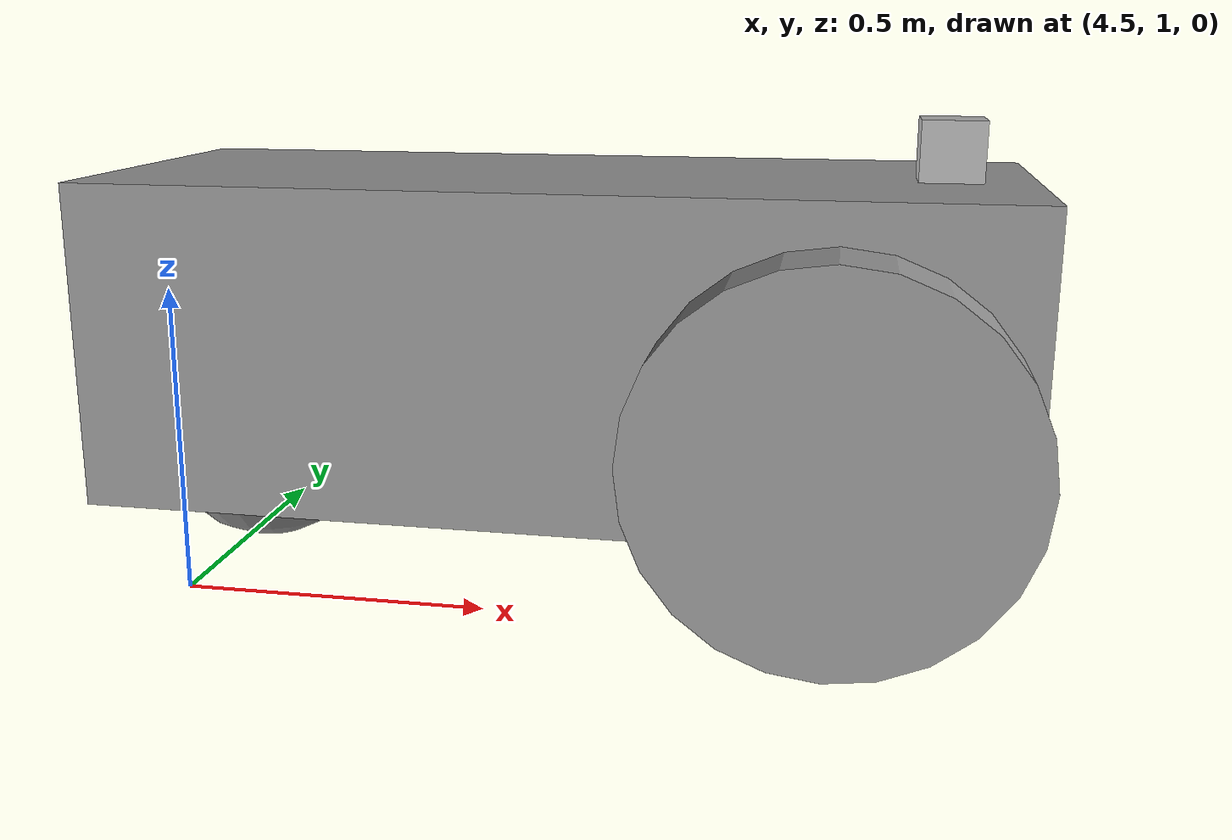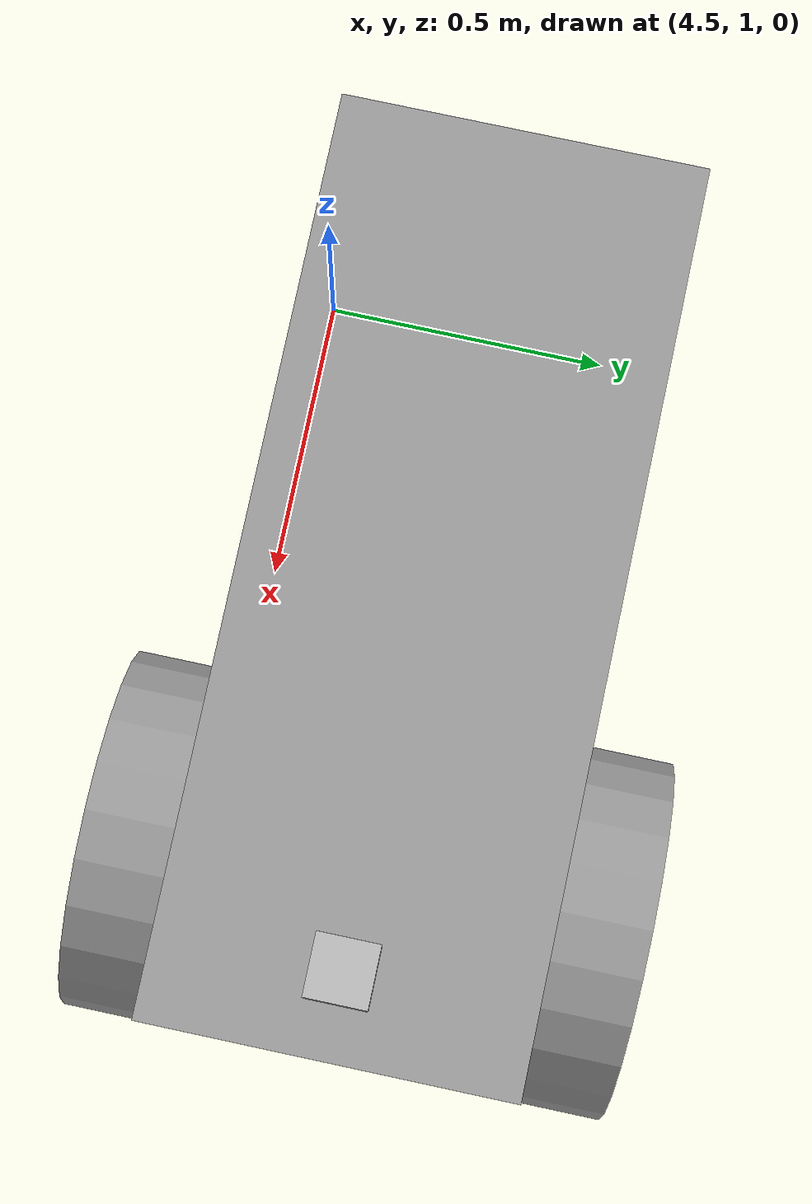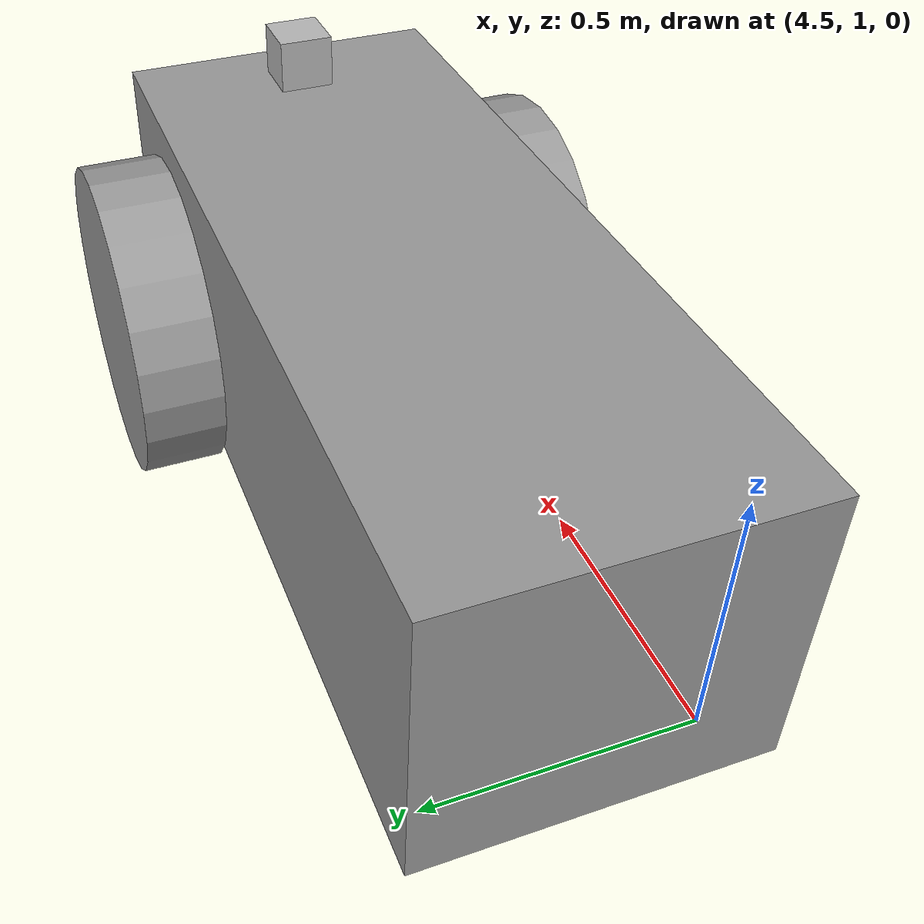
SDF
<?xml version='1.0'?>
<sdf version='1.6'>
  <model name='MobileRobot'>
    <link name='Caster_Wheel'>
      <inertial>
        <mass>1</mass>
        <inertia>
          <ixx>0.1</ixx>
          <ixy>0</ixy>
          <ixz>0</ixz>
          <iyy>0.1</iyy>
          <iyz>0</iyz>
          <izz>0.1</izz>
        </inertia>
        <pose frame=''>0 0 0 0 -0 0</pose>
      </inertial>
      <pose frame=''>4.5329 1.28924 0.2 0 -0 0</pose>
      <gravity>1</gravity>
      <self_collide>0</self_collide>
      <kinematic>0</kinematic>
      <enable_wind>0</enable_wind>
      <visual name='visual'>
        <pose frame=''>0 0 0 0 -0 0</pose>
        <geometry>
          <sphere>
            <radius>0.2</radius>
          </sphere>
        </geometry>
        <material>
          <lighting>1</lighting>
          <script>
            <uri>file://media/materials/scripts/gazebo.material</uri>
            <name>Gazebo/Grey</name>
          </script>
          <shader type='vertex'>
            <normal_map>__default__</normal_map>
          </shader>
          <ambient>0.3 0.3 0.3 1</ambient>
          <diffuse>0.7 0.7 0.7 1</diffuse>
          <specular>0.01 0.01 0.01 1</specular>
          <emissive>0 0 0 1</emissive>
        </material>
        <transparency>0</transparency>
        <cast_shadows>1</cast_shadows>
      </visual>
      <collision name='collision'>
        <laser_retro>0</laser_retro>
        <max_contacts>10</max_contacts>
        <pose frame=''>0 0 0 0 -0 0</pose>
        <geometry>
          <sphere>
            <radius>0.2</radius>
          </sphere>
        </geometry>
        <surface>
          <friction>
            <ode>
              <mu>1</mu>
              <mu2>1</mu2>
              <fdir1>0 0 0</fdir1>
              <slip1>0</slip1>
              <slip2>0</slip2>
            </ode>
            <torsional>
              <coefficient>1</coefficient>
              <patch_radius>0</patch_radius>
              <surface_radius>0</surface_radius>
              <use_patch_radius>1</use_patch_radius>
              <ode>
                <slip>0</slip>
              </ode>
            </torsional>
          </friction>
          <bounce>
            <restitution_coefficient>0</restitution_coefficient>
            <threshold>1e+06</threshold>
          </bounce>
          <contact>
            <collide_without_contact>0</collide_without_contact>
            <collide_without_contact_bitmask>1</collide_without_contact_bitmask>
            <collide_bitmask>1</collide_bitmask>
            <ode>
              <soft_cfm>0</soft_cfm>
              <soft_erp>0.2</soft_erp>
              <kp>1e+13</kp>
              <kd>1</kd>
              <max_vel>0.01</max_vel>
              <min_depth>0</min_depth>
            </ode>
            <bullet>
              <split_impulse>1</split_impulse>
              <split_impulse_penetration_threshold>-0.01</split_impulse_penetration_threshold>
              <soft_cfm>0</soft_cfm>
              <soft_erp>0.2</soft_erp>
              <kp>1e+13</kp>
              <kd>1</kd>
            </bullet>
          </contact>
        </surface>
      </collision>
    </link>
    <link name='Chassis'>
      <inertial>
        <mass>0.993173</mass>
        <inertia>
          <ixx>0.105849</ixx>
          <ixy>0</ixy>
          <ixz>0</ixz>
          <iyy>0.315735</iyy>
          <iyz>0</iyz>
          <izz>0.375415</izz>
        </inertia>
        <pose frame=''>0 0 0 0 -0 0</pose>
      </inertial>
      <pose frame=''>5.0829 1.28924 0.4 0 -0 0</pose>
      <self_collide>0</self_collide>
      <enable_wind>0</enable_wind>
      <kinematic>0</kinematic>
      <gravity>1</gravity>
      <visual name='visual'>
        <pose frame=''>0 0 0 0 -0 0</pose>
        <geometry>
          <box>
            <size>1.5 0.6 0.528125</size>
          </box>
        </geometry>
        <material>
          <lighting>1</lighting>
          <script>
            <uri>file://media/materials/scripts/gazebo.material</uri>
            <name>Gazebo/Grey</name>
          </script>
          <shader type='vertex'>
            <normal_map>__default__</normal_map>
          </shader>
          <ambient>0.3 0.3 0.3 1</ambient>
          <diffuse>0.7 0.7 0.7 1</diffuse>
          <specular>0.01 0.01 0.01 1</specular>
          <emissive>0 0 0 1</emissive>
        </material>
        <transparency>0</transparency>
        <cast_shadows>1</cast_shadows>
      </visual>
      <collision name='collision'>
        <laser_retro>0</laser_retro>
        <max_contacts>10</max_contacts>
        <pose frame=''>0 0 0 0 -0 0</pose>
        <geometry>
          <box>
            <size>1.5 0.6 0.528125</size>
          </box>
        </geometry>
        <surface>
          <friction>
            <ode>
              <mu>1</mu>
              <mu2>1</mu2>
              <fdir1>0 0 0</fdir1>
              <slip1>0</slip1>
              <slip2>0</slip2>
            </ode>
            <torsional>
              <coefficient>1</coefficient>
              <patch_radius>0</patch_radius>
              <surface_radius>0</surface_radius>
              <use_patch_radius>1</use_patch_radius>
              <ode>
                <slip>0</slip>
              </ode>
            </torsional>
          </friction>
          <bounce>
            <restitution_coefficient>0</restitution_coefficient>
            <threshold>1e+06</threshold>
          </bounce>
          <contact>
            <collide_without_contact>0</collide_without_contact>
            <collide_without_contact_bitmask>1</collide_without_contact_bitmask>
            <collide_bitmask>1</collide_bitmask>
            <ode>
              <soft_cfm>0</soft_cfm>
              <soft_erp>0.2</soft_erp>
              <kp>1e+13</kp>
              <kd>1</kd>
              <max_vel>0.01</max_vel>
              <min_depth>0</min_depth>
            </ode>
            <bullet>
              <split_impulse>1</split_impulse>
              <split_impulse_penetration_threshold>-0.01</split_impulse_penetration_threshold>
              <soft_cfm>0</soft_cfm>
              <soft_erp>0.2</soft_erp>
              <kp>1e+13</kp>
              <kd>1</kd>
            </bullet>
          </contact>
        </surface>
      </collision>
    </link>
    <link name='Wheel_A'>
      <inertial>
        <mass>1</mass>
        <inertia>
          <ixx>0.145833</ixx>
          <ixy>0</ixy>
          <ixz>0</ixz>
          <iyy>0.145833</iyy>
          <iyz>0</iyz>
          <izz>0.125</izz>
        </inertia>
        <pose frame=''>0 0 0 0 -0 0</pose>
      </inertial>
      <pose frame=''>5.5329 1.66427 0.3 1.5707 -0 0</pose>
      <gravity>1</gravity>
      <self_collide>0</self_collide>
      <kinematic>0</kinematic>
      <enable_wind>0</enable_wind>
      <visual name='visual'>
        <pose frame=''>0 0 0 0 -0 0</pose>
        <geometry>
          <cylinder>
            <radius>0.3</radius>
            <length>0.15</length>
          </cylinder>
        </geometry>
        <material>
          <lighting>1</lighting>
          <script>
            <uri>file://media/materials/scripts/gazebo.material</uri>
            <name>Gazebo/Grey</name>
          </script>
          <shader type='vertex'>
            <normal_map>__default__</normal_map>
          </shader>
          <ambient>0.3 0.3 0.3 1</ambient>
          <diffuse>0.7 0.7 0.7 1</diffuse>
          <specular>0.01 0.01 0.01 1</specular>
          <emissive>0 0 0 1</emissive>
        </material>
        <transparency>0</transparency>
        <cast_shadows>1</cast_shadows>
      </visual>
      <collision name='collision'>
        <laser_retro>0</laser_retro>
        <max_contacts>10</max_contacts>
        <pose frame=''>0 0 0 0 -0 0</pose>
        <geometry>
          <cylinder>
            <radius>0.3</radius>
            <length>0.15</length>
          </cylinder>
        </geometry>
        <surface>
          <friction>
            <ode>
              <mu>1</mu>
              <mu2>1</mu2>
              <fdir1>0 0 0</fdir1>
              <slip1>0</slip1>
              <slip2>0</slip2>
            </ode>
            <torsional>
              <coefficient>1</coefficient>
              <patch_radius>0</patch_radius>
              <surface_radius>0</surface_radius>
              <use_patch_radius>1</use_patch_radius>
              <ode>
                <slip>0</slip>
              </ode>
            </torsional>
          </friction>
          <bounce>
            <restitution_coefficient>0</restitution_coefficient>
            <threshold>1e+06</threshold>
          </bounce>
          <contact>
            <collide_without_contact>0</collide_without_contact>
            <collide_without_contact_bitmask>1</collide_without_contact_bitmask>
            <collide_bitmask>1</collide_bitmask>
            <ode>
              <soft_cfm>0</soft_cfm>
              <soft_erp>0.2</soft_erp>
              <kp>1e+13</kp>
              <kd>1</kd>
              <max_vel>0.01</max_vel>
              <min_depth>0</min_depth>
            </ode>
            <bullet>
              <split_impulse>1</split_impulse>
              <split_impulse_penetration_threshold>-0.01</split_impulse_penetration_threshold>
              <soft_cfm>0</soft_cfm>
              <soft_erp>0.2</soft_erp>
              <kp>1e+13</kp>
              <kd>1</kd>
            </bullet>
          </contact>
        </surface>
      </collision>
    </link>
    <link name='Wheel_B'>
      <inertial>
        <mass>1</mass>
        <inertia>
          <ixx>0.145833</ixx>
          <ixy>0</ixy>
          <ixz>0</ixz>
          <iyy>0.145833</iyy>
          <iyz>0</iyz>
          <izz>0.125</izz>
        </inertia>
        <pose frame=''>0 0 0 0 -0 0</pose>
      </inertial>
      <pose frame=''>5.5329 0.914211 0.3 1.5707 -0 0</pose>
      <gravity>1</gravity>
      <self_collide>0</self_collide>
      <kinematic>0</kinematic>
      <enable_wind>0</enable_wind>
      <visual name='visual'>
        <pose frame=''>0 0 0 0 -0 0</pose>
        <geometry>
          <cylinder>
            <radius>0.3</radius>
            <length>0.15</length>
          </cylinder>
        </geometry>
        <material>
          <lighting>1</lighting>
          <script>
            <uri>file://media/materials/scripts/gazebo.material</uri>
            <name>Gazebo/Grey</name>
          </script>
          <shader type='vertex'>
            <normal_map>__default__</normal_map>
          </shader>
          <ambient>0.3 0.3 0.3 1</ambient>
          <diffuse>0.7 0.7 0.7 1</diffuse>
          <specular>0.01 0.01 0.01 1</specular>
          <emissive>0 0 0 1</emissive>
        </material>
        <transparency>0</transparency>
        <cast_shadows>1</cast_shadows>
      </visual>
      <collision name='collision'>
        <laser_retro>0</laser_retro>
        <max_contacts>10</max_contacts>
        <pose frame=''>0 0 0 0 -0 0</pose>
        <geometry>
          <cylinder>
            <radius>0.3</radius>
            <length>0.15</length>
          </cylinder>
        </geometry>
        <surface>
          <friction>
            <ode>
              <mu>1</mu>
              <mu2>1</mu2>
              <fdir1>0 0 0</fdir1>
              <slip1>0</slip1>
              <slip2>0</slip2>
            </ode>
            <torsional>
              <coefficient>1</coefficient>
              <patch_radius>0</patch_radius>
              <surface_radius>0</surface_radius>
              <use_patch_radius>1</use_patch_radius>
              <ode>
                <slip>0</slip>
              </ode>
            </torsional>
          </friction>
          <bounce>
            <restitution_coefficient>0</restitution_coefficient>
            <threshold>1e+06</threshold>
          </bounce>
          <contact>
            <collide_without_contact>0</collide_without_contact>
            <collide_without_contact_bitmask>1</collide_without_contact_bitmask>
            <collide_bitmask>1</collide_bitmask>
            <ode>
              <soft_cfm>0</soft_cfm>
              <soft_erp>0.2</soft_erp>
              <kp>1e+13</kp>
              <kd>1</kd>
              <max_vel>0.01</max_vel>
              <min_depth>0</min_depth>
            </ode>
            <bullet>
              <split_impulse>1</split_impulse>
              <split_impulse_penetration_threshold>-0.01</split_impulse_penetration_threshold>
              <soft_cfm>0</soft_cfm>
              <soft_erp>0.2</soft_erp>
              <kp>1e+13</kp>
              <kd>1</kd>
            </bullet>
          </contact>
        </surface>
      </collision>
    </link>
    <model name='depth_camera'>
      <link name='link'>
        <pose frame=''>0 0 0.05 0 -0 0</pose>
        <inertial>
          <mass>0.1</mass>
          <inertia>
            <ixx>0.000166667</ixx>
            <iyy>0.000166667</iyy>
            <izz>0.000166667</izz>
            <ixy>0</ixy>
            <ixz>0</ixz>
            <iyz>0</iyz>
          </inertia>
        </inertial>
        <collision name='collision'>
          <geometry>
            <box>
              <size>0.1 0.1 0.1</size>
            </box>
          </geometry>
          <max_contacts>10</max_contacts>
          <surface>
            <contact>
              <ode/>
            </contact>
            <bounce/>
            <friction>
              <torsional>
                <ode/>
              </torsional>
              <ode/>
            </friction>
          </surface>
        </collision>
        <visual name='visual'>
          <geometry>
            <box>
              <size>0.1 0.1 0.1</size>
            </box>
          </geometry>
        </visual>
        <sensor name='camera' type='depth'>
          <camera name='__default__'>
            <horizontal_fov>1.047</horizontal_fov>
            <image>
              <width>320</width>
              <height>240</height>
            </image>
            <clip>
              <near>0.1</near>
              <far>100</far>
            </clip>
          </camera>
          <always_on>1</always_on>
          <update_rate>30</update_rate>
          <visualize>1</visualize>
        </sensor>
        <self_collide>0</self_collide>
        <enable_wind>0</enable_wind>
        <kinematic>0</kinematic>
      </link>
      <pose frame=''>5.69644 1.28616 0.660542 0 -0 0</pose>
    </model>
    <joint name='Chassis_JOINT_0' type='ball'>
      <parent>Chassis</parent>
      <child>Caster_Wheel</child>
      <pose frame=''>0 0 0 0 -0 0</pose>
      <physics>
        <ode>
          <limit>
            <cfm>0</cfm>
            <erp>0.2</erp>
          </limit>
          <suspension>
            <cfm>0</cfm>
            <erp>0.2</erp>
          </suspension>
        </ode>
      </physics>
    </joint>
    <joint name='Chassis_JOINT_1' type='revolute'>
      <parent>Chassis</parent>
      <child>Wheel_B</child>
      <pose frame=''>0 0 0 0 -0 0</pose>
      <axis>
        <xyz>0 0 1</xyz>
        <use_parent_model_frame>0</use_parent_model_frame>
        <limit>
          <lower>-1.79769e+308</lower>
          <upper>1.79769e+308</upper>
          <effort>-1</effort>
          <velocity>-1</velocity>
        </limit>
        <dynamics>
          <spring_reference>0</spring_reference>
          <spring_stiffness>0</spring_stiffness>
          <damping>0</damping>
        </dynamics>
      </axis>
      <physics>
        <ode>
          <limit>
            <cfm>0</cfm>
            <erp>0.2</erp>
          </limit>
          <suspension>
            <cfm>0</cfm>
            <erp>0.2</erp>
          </suspension>
        </ode>
      </physics>
    </joint>
    <joint name='Chassis_JOINT_2_0' type='revolute'>
      <parent>Chassis</parent>
      <child>Wheel_A</child>
      <pose frame=''>0 0 0 0 -0 0</pose>
      <axis>
        <xyz>0 0 1</xyz>
        <use_parent_model_frame>0</use_parent_model_frame>
        <limit>
          <lower>-1.79769e+308</lower>
          <upper>1.79769e+308</upper>
          <effort>-1</effort>
          <velocity>-1</velocity>
        </limit>
        <dynamics>
          <spring_reference>0</spring_reference>
          <spring_stiffness>0</spring_stiffness>
          <damping>0</damping>
        </dynamics>
      </axis>
      <physics>
        <ode>
          <limit>
            <cfm>0</cfm>
            <erp>0.2</erp>
          </limit>
          <suspension>
            <cfm>0</cfm>
            <erp>0.2</erp>
          </suspension>
        </ode>
      </physics>
    </joint>
    <joint name='Chassis_JOINT_2' type='fixed'>
      <parent>Chassis</parent>
      <child>depth_camera::link</child>
      <pose frame=''>0 0 0 0 -0 0</pose>
      <physics>
        <ode>
          <limit>
            <cfm>0</cfm>
            <erp>0.2</erp>
          </limit>
          <suspension>
            <cfm>0</cfm>
            <erp>0.2</erp>
          </suspension>
        </ode>
      </physics>
    </joint>
    <joint name='Chassis_JOINT_5' type='revolute'>
      <parent>Chassis</parent>
      <child>Wheel_A</child>
      <pose frame=''>0 0 0 0 -0 0</pose>
      <axis>
        <xyz>0 0 1</xyz>
        <use_parent_model_frame>0</use_parent_model_frame>
        <limit>
          <lower>-1.79769e+308</lower>
          <upper>1.79769e+308</upper>
          <effort>-1</effort>
          <velocity>-1</velocity>
        </limit>
        <dynamics>
          <spring_reference>0</spring_reference>
          <spring_stiffness>0</spring_stiffness>
          <damping>0</damping>
          <friction>0</friction>
        </dynamics>
      </axis>
      <physics>
        <ode>
          <limit>
            <cfm>0</cfm>
            <erp>0.2</erp>
          </limit>
          <suspension>
            <cfm>0</cfm>
            <erp>0.2</erp>
          </suspension>
        </ode>
      </physics>
    </joint>
    <static>0</static>
    <allow_auto_disable>1</allow_auto_disable>
    <plugin name='follower' filename='libFollowerPlugin.so'/>
  </model>
</sdf>
